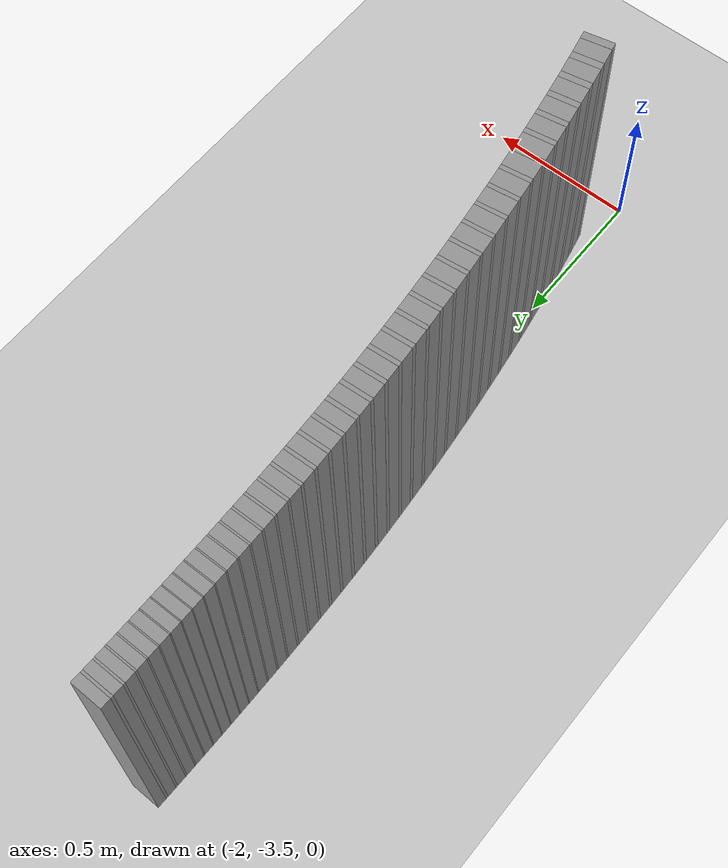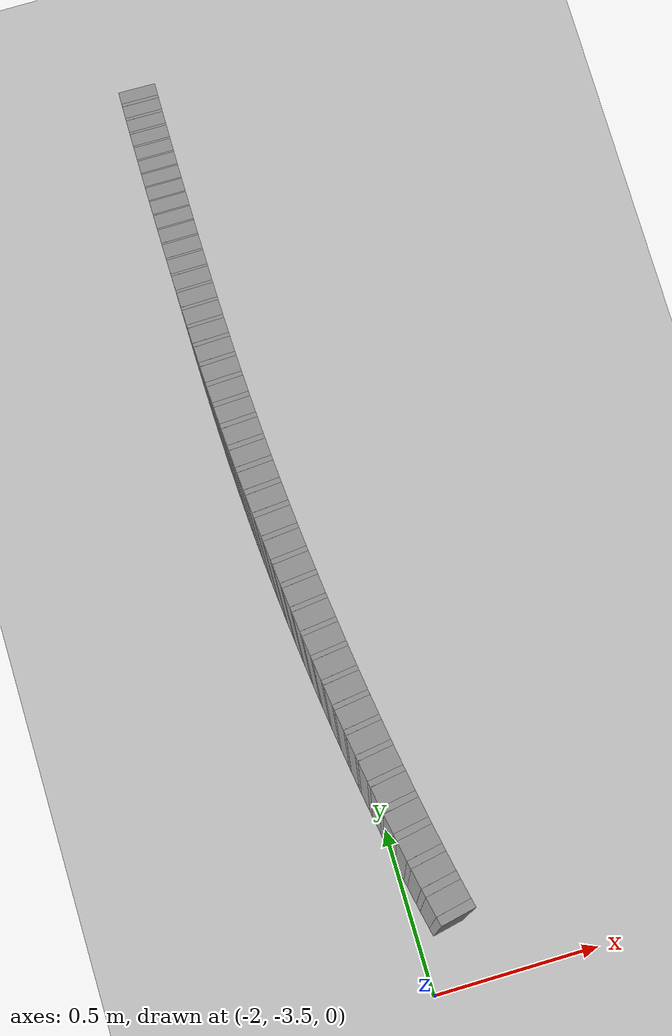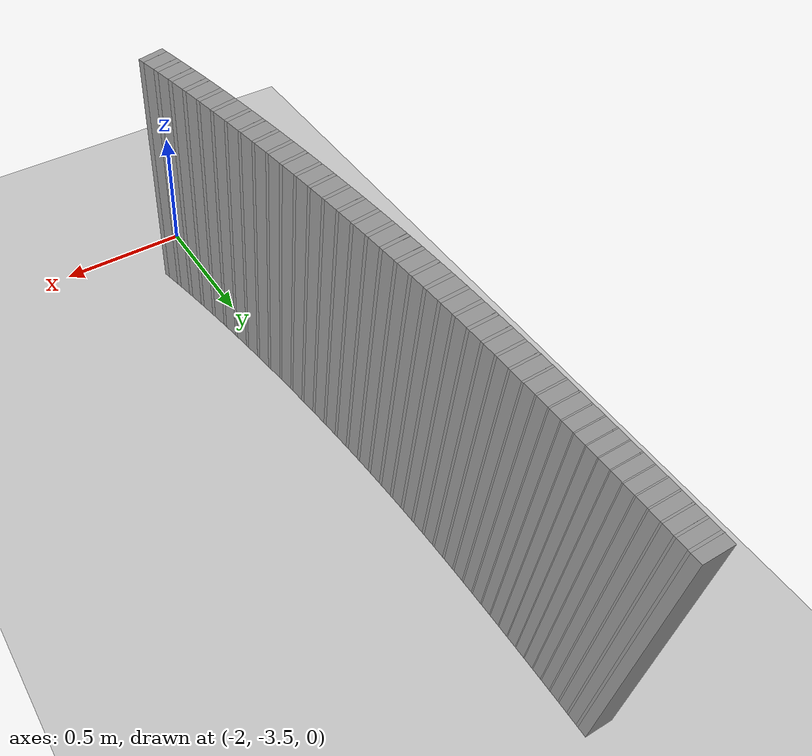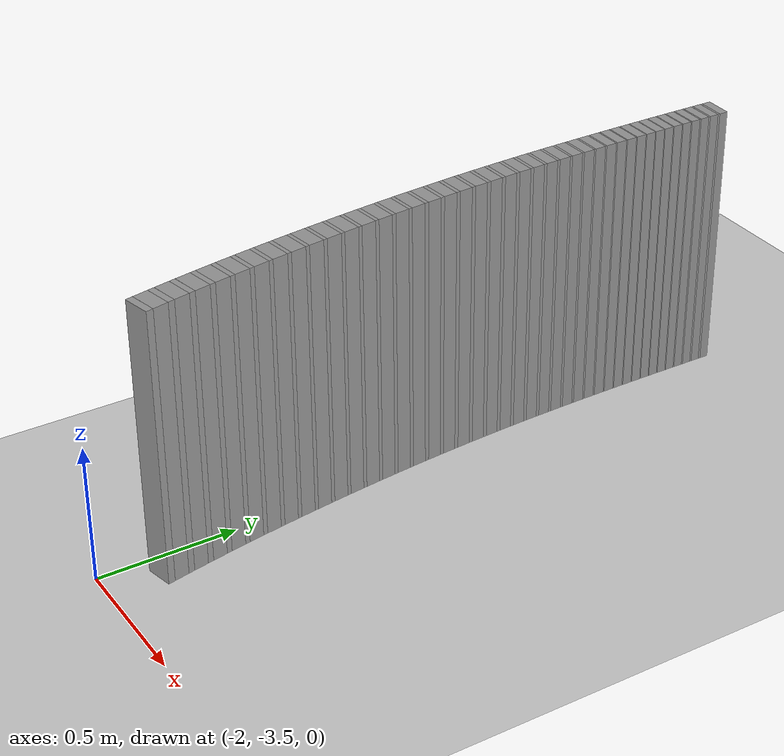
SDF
<sdf version="1.6">
 <world name="default">
  <include><uri>model://ground_plane</uri></include>
  <include><uri>model://sun</uri></include>
  <model name="wall_805_outward">
   <static>true</static>
   <link name="link">
    <collision name="collision">
     <geometry><box><size>0.026101114466182417 0.1 1.0</size></box></geometry>
    </collision>
    <visual name="visual">
     <geometry><box><size>0.026101114466182417 0.1 1.0</size></box></geometry>
     <material>
      <script><uri>file://media/materials/scripts/gazebo.material</uri><name>Gazebo/Gray</name></script>
     </material>
    </visual>
   </link>
   <pose>-1.906251266252485 -3.312685699877262 0.5 0 0 1.7843257864441062</pose>
  </model>
  <model name="wall_806_outward">
   <static>true</static>
   <link name="link">
    <collision name="collision">
     <geometry><box><size>0.055365599347843346 0.1 1.0</size></box></geometry>
    </collision>
    <visual name="visual">
     <geometry><box><size>0.055365599347843346 0.1 1.0</size></box></geometry>
     <material>
      <script><uri>file://media/materials/scripts/gazebo.material</uri><name>Gazebo/Gray</name></script>
     </material>
    </visual>
   </link>
   <pose>-1.9147064324723306 -3.2728397321254095 0.5 0 0 1.7778004615197482</pose>
  </model>
  <model name="wall_807_outward">
   <static>true</static>
   <link name="link">
    <collision name="collision">
     <geometry><box><size>0.023868733235289666 0.1 1.0</size></box></geometry>
    </collision>
    <visual name="visual">
     <geometry><box><size>0.023868733235289666 0.1 1.0</size></box></geometry>
     <material>
      <script><uri>file://media/materials/scripts/gazebo.material</uri><name>Gazebo/Gray</name></script>
     </material>
    </visual>
   </link>
   <pose>-1.922779168002299 -3.2340539223218454 0.5 0 0 1.7718332427978358</pose>
  </model>
  <model name="wall_808_outward">
   <static>true</static>
   <link name="link">
    <collision name="collision">
     <geometry><box><size>0.05557156901594312 0.1 1.0</size></box></geometry>
    </collision>
    <visual name="visual">
     <geometry><box><size>0.05557156901594312 0.1 1.0</size></box></geometry>
     <material>
      <script><uri>file://media/materials/scripts/gazebo.material</uri><name>Gazebo/Gray</name></script>
     </material>
    </visual>
   </link>
   <pose>-1.930548142678702 -3.195101109455034 0.5 0 0 1.765866024075912</pose>
  </model>
  <model name="wall_809_outward">
   <static>true</static>
   <link name="link">
    <collision name="collision">
     <geometry><box><size>0.021793878816943484 0.1 1.0</size></box></geometry>
    </collision>
    <visual name="visual">
     <geometry><box><size>0.021793878816943484 0.1 1.0</size></box></geometry>
     <material>
      <script><uri>file://media/materials/scripts/gazebo.material</uri><name>Gazebo/Gray</name></script>
     </material>
    </visual>
   </link>
   <pose>-1.937987928057562 -3.157140686185897 0.5 0 0 1.7604175274142606</pose>
  </model>
  <model name="wall_810_outward">
   <static>true</static>
   <link name="link">
    <collision name="collision">
     <geometry><box><size>0.05575799635424003 0.1 1.0</size></box></geometry>
    </collision>
    <visual name="visual">
     <geometry><box><size>0.05575799635424003 0.1 1.0</size></box></geometry>
     <material>
      <script><uri>file://media/materials/scripts/gazebo.material</uri><name>Gazebo/Gray</name></script>
     </material>
    </visual>
   </link>
   <pose>-1.9451474310706933 -3.11903155560341 0.5 0 0 1.7549690307526227</pose>
  </model>
  <model name="wall_811_outward">
   <static>true</static>
   <link name="link">
    <collision name="collision">
     <geometry><box><size>0.01992765536667884 0.1 1.0</size></box></geometry>
    </collision>
    <visual name="visual">
     <geometry><box><size>0.01992765536667884 0.1 1.0</size></box></geometry>
     <material>
      <script><uri>file://media/materials/scripts/gazebo.material</uri><name>Gazebo/Gray</name></script>
     </material>
    </visual>
   </link>
   <pose>-1.952028890240169 -3.081819755131357 0.5 0 0 1.7499870963026463</pose>
  </model>
  <model name="wall_812_outward">
   <static>true</static>
   <link name="link">
    <collision name="collision">
     <geometry><box><size>0.055901612710562036 0.1 1.0</size></box></geometry>
    </collision>
    <visual name="visual">
     <geometry><box><size>0.055901612710562036 0.1 1.0</size></box></geometry>
     <material>
      <script><uri>file://media/materials/scripts/gazebo.material</uri><name>Gazebo/Gray</name></script>
     </material>
    </visual>
   </link>
   <pose>-1.958649462085041 -3.0444877234355143 0.5 0 0 1.7450051618526778</pose>
  </model>
  <model name="wall_813_outward">
   <static>true</static>
   <link name="link">
    <collision name="collision">
     <geometry><box><size>0.018301767698452858 0.1 1.0</size></box></geometry>
    </collision>
    <visual name="visual">
     <geometry><box><size>0.018301767698452858 0.1 1.0</size></box></geometry>
     <material>
      <script><uri>file://media/materials/scripts/gazebo.material</uri><name>Gazebo/Gray</name></script>
     </material>
    </visual>
   </link>
   <pose>-1.9650390088183514 -3.0079404423603116 0.5 0 0 1.7404297039636867</pose>
  </model>
  <model name="wall_814_outward">
   <static>true</static>
   <link name="link">
    <collision name="collision">
     <geometry><box><size>0.05598160832519404 0.1 1.0</size></box></geometry>
    </collision>
    <visual name="visual">
     <geometry><box><size>0.05598160832519404 0.1 1.0</size></box></geometry>
     <material>
      <script><uri>file://media/materials/scripts/gazebo.material</uri><name>Gazebo/Gray</name></script>
     </material>
    </visual>
   </link>
   <pose>-1.9711830241899315 -2.9713105269736393 0.5 0 0 1.7358542460746949</pose>
  </model>
  <model name="wall_815_outward">
   <static>true</static>
   <link name="link">
    <collision name="collision">
     <geometry><box><size>0.016937672406390564 0.1 1.0</size></box></geometry>
    </collision>
    <visual name="visual">
     <geometry><box><size>0.016937672406390564 0.1 1.0</size></box></geometry>
     <material>
      <script><uri>file://media/materials/scripts/gazebo.material</uri><name>Gazebo/Gray</name></script>
     </material>
    </visual>
   </link>
   <pose>-1.9771383024511584 -2.935340598060077 0.5 0 0 1.7316198153189353</pose>
  </model>
  <model name="wall_816_outward">
   <static>true</static>
   <link name="link">
    <collision name="collision">
     <geometry><box><size>0.05598149987889856 0.1 1.0</size></box></geometry>
    </collision>
    <visual name="visual">
     <geometry><box><size>0.05598149987889856 0.1 1.0</size></box></geometry>
     <material>
      <script><uri>file://media/materials/scripts/gazebo.material</uri><name>Gazebo/Gray</name></script>
     </material>
    </visual>
   </link>
   <pose>-1.9828595816666523 -2.8993327636979283 0.5 0 0 1.7273853845631737</pose>
  </model>
  <model name="wall_817_outward">
   <static>true</static>
   <link name="link">
    <collision name="collision">
     <geometry><box><size>0.015840406032205375 0.1 1.0</size></box></geometry>
    </collision>
    <visual name="visual">
     <geometry><box><size>0.015840406032205375 0.1 1.0</size></box></geometry>
     <material>
      <script><uri>file://media/materials/scripts/gazebo.material</uri><name>Gazebo/Gray</name></script>
     </material>
    </visual>
   </link>
   <pose>-1.9884289008446383 -2.863856352529578 0.5 0 0 1.7234252727043915</pose>
  </model>
  <model name="wall_818_outward">
   <static>true</static>
   <link name="link">
    <collision name="collision">
     <geometry><box><size>0.05588767962854641 0.1 1.0</size></box></geometry>
    </collision>
    <visual name="visual">
     <geometry><box><size>0.05588767962854641 0.1 1.0</size></box></geometry>
     <material>
      <script><uri>file://media/materials/scripts/gazebo.material</uri><name>Gazebo/Gray</name></script>
     </material>
    </visual>
   </link>
   <pose>-1.993772156408659 -2.8283926285674856 0.5 0 0 1.7194651608456204</pose>
  </model>
  <model name="wall_819_outward">
   <static>true</static>
   <link name="link">
    <collision name="collision">
     <geometry><box><size>0.01498653764636429 0.1 1.0</size></box></geometry>
    </collision>
    <visual name="visual">
     <geometry><box><size>0.01498653764636429 0.1 1.0</size></box></geometry>
     <material>
      <script><uri>file://media/materials/scripts/gazebo.material</uri><name>Gazebo/Gray</name></script>
     </material>
    </visual>
   </link>
   <pose>-1.9989933914490945 -2.793342315673714 0.5 0 0 1.71571851766857</pose>
  </model>
  <model name="wall_820_outward">
   <static>true</static>
   <link name="link">
    <collision name="collision">
     <geometry><box><size>0.05569254163071618 0.1 1.0</size></box></geometry>
    </collision>
    <visual name="visual">
     <geometry><box><size>0.05569254163071618 0.1 1.0</size></box></geometry>
     <material>
      <script><uri>file://media/materials/scripts/gazebo.material</uri><name>Gazebo/Gray</name></script>
     </material>
    </visual>
   </link>
   <pose>-2.003993702150703 -2.758358361841562 0.5 0 0 1.711971874491481</pose>
  </model>
  <model name="wall_821_outward">
   <static>true</static>
   <link name="link">
    <collision name="collision">
     <geometry><box><size>0.014364639638313621 0.1 1.0</size></box></geometry>
    </collision>
    <visual name="visual">
     <geometry><box><size>0.014364639638313621 0.1 1.0</size></box></geometry>
     <material>
      <script><uri>file://media/materials/scripts/gazebo.material</uri><name>Gazebo/Gray</name></script>
     </material>
    </visual>
   </link>
   <pose>-2.0088969295286736 -2.723674677726181 0.5 0 0 1.7083807068630281</pose>
  </model>
  <model name="wall_822_outward">
   <static>true</static>
   <link name="link">
    <collision name="collision">
     <geometry><box><size>0.0553910246657341 0.1 1.0</size></box></geometry>
    </collision>
    <visual name="visual">
     <geometry><box><size>0.0553910246657341 0.1 1.0</size></box></geometry>
     <material>
      <script><uri>file://media/materials/scripts/gazebo.material</uri><name>Gazebo/Gray</name></script>
     </material>
    </visual>
   </link>
   <pose>-2.0135819058336275 -2.6891129704867205 0.5 0 0 1.7047895392345283</pose>
  </model>
  <model name="wall_823_outward">
   <static>true</static>
   <link name="link">
    <collision name="collision">
     <geometry><box><size>0.013958855004138309 0.1 1.0</size></box></geometry>
    </collision>
    <visual name="visual">
     <geometry><box><size>0.013958855004138309 0.1 1.0</size></box></geometry>
     <material>
      <script><uri>file://media/materials/scripts/gazebo.material</uri><name>Gazebo/Gray</name></script>
     </material>
    </visual>
   </link>
   <pose>-2.018190078189265 -2.6547456335797497 0.5 0 0 1.7012998184004398</pose>
  </model>
  <model name="wall_824_outward">
   <static>true</static>
   <link name="link">
    <collision name="collision">
     <geometry><box><size>0.05498393052218721 0.1 1.0</size></box></geometry>
    </collision>
    <visual name="visual">
     <geometry><box><size>0.05498393052218721 0.1 1.0</size></box></geometry>
     <material>
      <script><uri>file://media/materials/scripts/gazebo.material</uri><name>Gazebo/Gray</name></script>
     </material>
    </visual>
   </link>
   <pose>-2.0225808116171207 -2.620555049462502 0.5 0 0 1.697810097566351</pose>
  </model>
  <model name="wall_825_outward">
   <static>true</static>
   <link name="link">
    <collision name="collision">
     <geometry><box><size>0.013739665984322772 0.1 1.0</size></box></geometry>
    </collision>
    <visual name="visual">
     <geometry><box><size>0.013739665984322772 0.1 1.0</size></box></geometry>
     <material>
      <script><uri>file://media/materials/scripts/gazebo.material</uri><name>Gazebo/Gray</name></script>
     </material>
    </visual>
   </link>
   <pose>-2.026910095458298 -2.5864671006791182 0.5 0 0 1.6943751743156807</pose>
  </model>
  <model name="wall_826_outward">
   <static>true</static>
   <link name="link">
    <collision name="collision">
     <geometry><box><size>0.05447580906649355 0.1 1.0</size></box></geometry>
    </collision>
    <visual name="visual">
     <geometry><box><size>0.05447580906649355 0.1 1.0</size></box></geometry>
     <material>
      <script><uri>file://media/materials/scripts/gazebo.material</uri><name>Gazebo/Gray</name></script>
     </material>
    </visual>
   </link>
   <pose>-2.0310215039317394 -2.552608100816479 0.5 0 0 1.6909402510649862</pose>
  </model>
  <model name="wall_827_outward">
   <static>true</static>
   <link name="link">
    <collision name="collision">
     <geometry><box><size>0.013662488558460402 0.1 1.0</size></box></geometry>
    </collision>
    <visual name="visual">
     <geometry><box><size>0.013662488558460402 0.1 1.0</size></box></geometry>
     <material>
      <script><uri>file://media/materials/scripts/gazebo.material</uri><name>Gazebo/Gray</name></script>
     </material>
    </visual>
   </link>
   <pose>-2.0350816954824364 -2.5187817859919917 0.5 0 0 1.6875246222839455</pose>
  </model>
  <model name="wall_828_outward">
   <static>true</static>
   <link name="link">
    <collision name="collision">
     <geometry><box><size>0.053873935459573336 0.1 1.0</size></box></geometry>
    </collision>
    <visual name="visual">
     <geometry><box><size>0.053873935459573336 0.1 1.0</size></box></geometry>
     <material>
      <script><uri>file://media/materials/scripts/gazebo.material</uri><name>Gazebo/Gray</name></script>
     </material>
    </visual>
   </link>
   <pose>-2.0389230574285158 -2.485232807857095 0.5 0 0 1.6841089935029319</pose>
  </model>
  <model name="wall_829_outward">
   <static>true</static>
   <link name="link">
    <collision name="collision">
     <geometry><box><size>0.013717733022463196 0.1 1.0</size></box></geometry>
    </collision>
    <visual name="visual">
     <geometry><box><size>0.013717733022463196 0.1 1.0</size></box></geometry>
     <material>
      <script><uri>file://media/materials/scripts/gazebo.material</uri><name>Gazebo/Gray</name></script>
     </material>
    </visual>
   </link>
   <pose>-2.042720988082314 -2.4516510872064377 0.5 0 0 1.6806795535250518</pose>
  </model>
  <model name="wall_830_outward">
   <static>true</static>
   <link name="link">
    <collision name="collision">
     <geometry><box><size>0.05318836920498471 0.1 1.0</size></box></geometry>
    </collision>
    <visual name="visual">
     <geometry><box><size>0.05318836920498471 0.1 1.0</size></box></geometry>
     <material>
      <script><uri>file://media/materials/scripts/gazebo.material</uri><name>Gazebo/Gray</name></script>
     </material>
    </visual>
   </link>
   <pose>-2.046298854276681 -2.4183899483650277 0.5 0 0 1.6772501135470932</pose>
  </model>
  <model name="wall_831_outward">
   <static>true</static>
   <link name="link">
    <collision name="collision">
     <geometry><box><size>0.013857842791134776 0.1 1.0</size></box></geometry>
    </collision>
    <visual name="visual">
     <geometry><box><size>0.013857842791134776 0.1 1.0</size></box></geometry>
     <material>
      <script><uri>file://media/materials/scripts/gazebo.material</uri><name>Gazebo/Gray</name></script>
     </material>
    </visual>
   </link>
   <pose>-2.0498369059113566 -2.385054102572634 0.5 0 0 1.673785645918911</pose>
  </model>
  <model name="wall_832_outward">
   <static>true</static>
   <link name="link">
    <collision name="collision">
     <geometry><box><size>0.052432609224809204 0.1 1.0</size></box></geometry>
    </collision>
    <visual name="visual">
     <geometry><box><size>0.052432609224809204 0.1 1.0</size></box></geometry>
     <material>
      <script><uri>file://media/materials/scripts/gazebo.material</uri><name>Gazebo/Gray</name></script>
     </material>
    </visual>
   </link>
   <pose>-2.0531541185260065 -2.3520753226176128 0.5 0 0 1.6703211782907352</pose>
  </model>
  <model name="wall_833_outward">
   <static>true</static>
   <link name="link">
    <collision name="collision">
     <geometry><box><size>0.01404878281194037 0.1 1.0</size></box></geometry>
    </collision>
    <visual name="visual">
     <geometry><box><size>0.01404878281194037 0.1 1.0</size></box></geometry>
     <material>
      <script><uri>file://media/materials/scripts/gazebo.material</uri><name>Gazebo/Gray</name></script>
     </material>
    </visual>
   </link>
   <pose>-2.0564323817885892 -2.3189967103412457 0.5 0 0 1.6668089753669324</pose>
  </model>
  <model name="wall_834_outward">
   <static>true</static>
   <link name="link">
    <collision name="collision">
     <geometry><box><size>0.051620085810784214 0.1 1.0</size></box></geometry>
    </collision>
    <visual name="visual">
     <geometry><box><size>0.051620085810784214 0.1 1.0</size></box></geometry>
     <material>
      <script><uri>file://media/materials/scripts/gazebo.material</uri><name>Gazebo/Gray</name></script>
     </material>
    </visual>
   </link>
   <pose>-2.0594898137962687 -2.2863049690350525 0.5 0 0 1.6632967724430991</pose>
  </model>
  <model name="wall_835_outward">
   <static>true</static>
   <link name="link">
    <collision name="collision">
     <geometry><box><size>0.014204108194103305 0.1 1.0</size></box></geometry>
    </collision>
    <visual name="visual">
     <geometry><box><size>0.014204108194103305 0.1 1.0</size></box></geometry>
     <material>
      <script><uri>file://media/materials/scripts/gazebo.material</uri><name>Gazebo/Gray</name></script>
     </material>
    </visual>
   </link>
   <pose>-2.062504741927836 -2.2535312901749838 0.5 0 0 1.6597457379315792</pose>
  </model>
  <model name="wall_836_outward">
   <static>true</static>
   <link name="link">
    <collision name="collision">
     <geometry><box><size>0.0507649620986128 0.1 1.0</size></box></geometry>
    </collision>
    <visual name="visual">
     <geometry><box><size>0.0507649620986128 0.1 1.0</size></box></geometry>
     <material>
      <script><uri>file://media/materials/scripts/gazebo.material</uri><name>Gazebo/Gray</name></script>
     </material>
    </visual>
   </link>
   <pose>-2.065300621688487 -2.2211673317197405 0.5 0 0 1.6561947034200635</pose>
  </model>
  <model name="wall_837_outward">
   <static>true</static>
   <link name="link">
    <collision name="collision">
     <geometry><box><size>0.01436101219956566 0.1 1.0</size></box></geometry>
    </collision>
    <visual name="visual">
     <geometry><box><size>0.01436101219956566 0.1 1.0</size></box></geometry>
     <material>
      <script><uri>file://media/materials/scripts/gazebo.material</uri><name>Gazebo/Gray</name></script>
     </material>
    </visual>
   </link>
   <pose>-2.068052379287768 -2.1887208586775926 0.5 0 0 1.65260444265711</pose>
  </model>
  <model name="wall_838_outward">
   <static>true</static>
   <link name="link">
    <collision name="collision">
     <geometry><box><size>0.04988134985242393 0.1 1.0</size></box></geometry>
    </collision>
    <visual name="visual">
     <geometry><box><size>0.04988134985242393 0.1 1.0</size></box></geometry>
     <material>
      <script><uri>file://media/materials/scripts/gazebo.material</uri><name>Gazebo/Gray</name></script>
     </material>
    </visual>
   </link>
   <pose>-2.070587965476383 -2.1566999473107202 0.5 0 0 1.649014181894171</pose>
  </model>
  <model name="wall_839_outward">
   <static>true</static>
   <link name="link">
    <collision name="collision">
     <geometry><box><size>0.014413291470332847 0.1 1.0</size></box></geometry>
    </collision>
    <visual name="visual">
     <geometry><box><size>0.014413291470332847 0.1 1.0</size></box></geometry>
     <material>
      <script><uri>file://media/materials/scripts/gazebo.material</uri><name>Gazebo/Gray</name></script>
     </material>
    </visual>
   </link>
   <pose>-2.073074004638496 -2.1246489332664216 0.5 0 0 1.6454108512289936</pose>
  </model>
  <model name="wall_840_outward">
   <static>true</static>
   <link name="link">
    <collision name="collision">
     <geometry><box><size>0.048981101194899984 0.1 1.0</size></box></geometry>
    </collision>
    <visual name="visual">
     <geometry><box><size>0.048981101194899984 0.1 1.0</size></box></geometry>
     <material>
      <script><uri>file://media/materials/scripts/gazebo.material</uri><name>Gazebo/Gray</name></script>
     </material>
    </visual>
   </link>
   <pose>-2.0753488682825054 -2.093033510461309 0.5 0 0 1.6418075205638085</pose>
  </model>
  <model name="wall_841_outward">
   <static>true</static>
   <link name="link">
    <collision name="collision">
     <geometry><box><size>0.014344052613997356 0.1 1.0</size></box></geometry>
    </collision>
    <visual name="visual">
     <geometry><box><size>0.014344052613997356 0.1 1.0</size></box></geometry>
     <material>
      <script><uri>file://media/materials/scripts/gazebo.material</uri><name>Gazebo/Gray</name></script>
     </material>
    </visual>
   </link>
   <pose>-2.077569719083761 -2.0614489519047585 0.5 0 0 1.6382214997245168</pose>
  </model>
  <model name="wall_842_outward">
   <static>true</static>
   <link name="link">
    <collision name="collision">
     <geometry><box><size>0.0480750109535802 0.1 1.0</size></box></geometry>
    </collision>
    <visual name="visual">
     <geometry><box><size>0.0480750109535802 0.1 1.0</size></box></geometry>
     <material>
      <script><uri>file://media/materials/scripts/gazebo.material</uri><name>Gazebo/Gray</name></script>
     </material>
    </visual>
   </link>
   <pose>-2.079586419744099 -2.0303046815543837 0.5 0 0 1.634635478885287</pose>
  </model>
  <model name="wall_843_outward">
   <static>true</static>
   <link name="link">
    <collision name="collision">
     <geometry><box><size>0.014123345089744903 0.1 1.0</size></box></geometry>
    </collision>
    <visual name="visual">
     <geometry><box><size>0.014123345089744903 0.1 1.0</size></box></geometry>
     <material>
      <script><uri>file://media/materials/scripts/gazebo.material</uri><name>Gazebo/Gray</name></script>
     </material>
    </visual>
   </link>
   <pose>-2.0815455310221873 -1.9992673066583193 0.5 0 0 1.6311046352764293</pose>
  </model>
  <model name="wall_844_outward">
   <static>true</static>
   <link name="link">
    <collision name="collision">
     <geometry><box><size>0.04717200251562406 0.1 1.0</size></box></geometry>
    </collision>
    <visual name="visual">
     <geometry><box><size>0.04717200251562406 0.1 1.0</size></box></geometry>
     <material>
      <script><uri>file://media/materials/scripts/gazebo.material</uri><name>Gazebo/Gray</name></script>
     </material>
    </visual>
   </link>
   <pose>-2.0833095844095 -1.968670477595046 0.5 0 0 1.6275737916675783</pose>
  </model>
  <model name="wall_845_outward">
   <static>true</static>
   <link name="link">
    <collision name="collision">
     <geometry><box><size>0.013725528113957764 0.1 1.0</size></box></geometry>
    </collision>
    <visual name="visual">
     <geometry><box><size>0.013725528113957764 0.1 1.0</size></box></geometry>
     <material>
      <script><uri>file://media/materials/scripts/gazebo.material</uri><name>Gazebo/Gray</name></script>
     </material>
    </visual>
   </link>
   <pose>-2.08501394629916 -1.9382694816594468 0.5 0 0 1.6241424029053126</pose>
  </model>
  <model name="wall_846_outward">
   <static>true</static>
   <link name="link">
    <collision name="collision">
     <geometry><box><size>0.04627622644518665 0.1 1.0</size></box></geometry>
    </collision>
    <visual name="visual">
     <geometry><box><size>0.04627622644518665 0.1 1.0</size></box></geometry>
     <material>
      <script><uri>file://media/materials/scripts/gazebo.material</uri><name>Gazebo/Gray</name></script>
     </material>
    </visual>
   </link>
   <pose>-2.086534326381692 -1.9083071851474593 0.5 0 0 1.6207110141430687</pose>
  </model>
  <model name="wall_847_outward">
   <static>true</static>
   <link name="link">
    <collision name="collision">
     <geometry><box><size>0.013139259842641929 0.1 1.0</size></box></geometry>
    </collision>
    <visual name="visual">
     <geometry><box><size>0.013139259842641929 0.1 1.0</size></box></geometry>
     <material>
      <script><uri>file://media/materials/scripts/gazebo.material</uri><name>Gazebo/Gray</name></script>
     </material>
    </visual>
   </link>
   <pose>-2.087995008510993 -1.878635401071663 0.5 0 0 1.6174261932751604</pose>
  </model>
  <model name="wall_848_outward">
   <static>true</static>
   <link name="link">
    <collision name="collision">
     <geometry><box><size>0.04539241115154092 0.1 1.0</size></box></geometry>
    </collision>
    <visual name="visual">
     <geometry><box><size>0.04539241115154092 0.1 1.0</size></box></geometry>
     <material>
      <script><uri>file://media/materials/scripts/gazebo.material</uri><name>Gazebo/Gray</name></script>
     </material>
    </visual>
   </link>
   <pose>-2.089284698519412 -1.8493980239976318 0.5 0 0 1.6141413724072866</pose>
  </model>
  <model name="wall_849_outward">
   <static>true</static>
   <link name="link">
    <collision name="collision">
     <geometry><box><size>0.012429973896954676 0.1 1.0</size></box></geometry>
    </collision>
    <visual name="visual">
     <geometry><box><size>0.012429973896954676 0.1 1.0</size></box></geometry>
     <material>
      <script><uri>file://media/materials/scripts/gazebo.material</uri><name>Gazebo/Gray</name></script>
     </material>
    </visual>
   </link>
   <pose>-2.090518166919289 -1.820513179411554 0.5 0 0 1.6110338739317585</pose>
  </model>
  <model name="wall_850_outward">
   <static>true</static>
   <link name="link">
    <collision name="collision">
     <geometry><box><size>0.044521685977948776 0.1 1.0</size></box></geometry>
    </collision>
    <visual name="visual">
     <geometry><box><size>0.044521685977948776 0.1 1.0</size></box></geometry>
     <material>
      <script><uri>file://media/materials/scripts/gazebo.material</uri><name>Gazebo/Gray</name></script>
     </material>
    </visual>
   </link>
   <pose>-2.0915945315519138 -1.7920577231014905 0.5 0 0 1.6079263754562467</pose>
  </model>
  <model name="wall_851_outward">
   <static>true</static>
   <link name="link">
    <collision name="collision">
     <geometry><box><size>0.011510125060694662 0.1 1.0</size></box></geometry>
    </collision>
    <visual name="visual">
     <geometry><box><size>0.011510125060694662 0.1 1.0</size></box></geometry>
     <material>
      <script><uri>file://media/materials/scripts/gazebo.material</uri><name>Gazebo/Gray</name></script>
     </material>
    </visual>
   </link>
   <pose>-2.092617974643212 -1.7640605363587385 0.5 0 0 1.6050488402199776</pose>
  </model>
  <model name="wall_852_outward">
   <static>true</static>
   <link name="link">
    <collision name="collision">
     <geometry><box><size>0.04366318828276564 0.1 1.0</size></box></geometry>
    </collision>
    <visual name="visual">
     <geometry><box><size>0.04366318828276564 0.1 1.0</size></box></geometry>
     <material>
      <script><uri>file://media/materials/scripts/gazebo.material</uri><name>Gazebo/Gray</name></script>
     </material>
    </visual>
   </link>
   <pose>-2.0934999148730555 -1.7364879998883298 0.5 0 0 1.6021713049837085</pose>
  </model>
  <model name="wall_853_outward">
   <static>true</static>
   <link name="link">
    <collision name="collision">
     <geometry><box><size>0.010519857348723693 0.1 1.0</size></box></geometry>
    </collision>
    <visual name="visual">
     <geometry><box><size>0.010519857348723693 0.1 1.0</size></box></geometry>
     <material>
      <script><uri>file://media/materials/scripts/gazebo.material</uri><name>Gazebo/Gray</name></script>
     </material>
    </visual>
   </link>
   <pose>-2.0943359441755955 -1.7094093945103626 0.5 0 0 1.5995413376147636</pose>
  </model>
  <model name="wall_854_outward">
   <static>true</static>
   <link name="link">
    <collision name="collision">
     <geometry><box><size>0.042817609184752685 0.1 1.0</size></box></geometry>
    </collision>
    <visual name="visual">
     <geometry><box><size>0.042817609184752685 0.1 1.0</size></box></geometry>
     <material>
      <script><uri>file://media/materials/scripts/gazebo.material</uri><name>Gazebo/Gray</name></script>
     </material>
    </visual>
   </link>
   <pose>-2.095046148376059 -1.6827501341087285 0.5 0 0 1.5969113702457518</pose>
  </model>
  <model name="wall_855_outward">
   <static>true</static>
   <link name="link">
    <collision name="collision">
     <geometry><box><size>0.009422410297821713 0.1 1.0</size></box></geometry>
    </collision>
    <visual name="visual">
     <geometry><box><size>0.009422410297821713 0.1 1.0</size></box></geometry>
     <material>
      <script><uri>file://media/materials/scripts/gazebo.material</uri><name>Gazebo/Gray</name></script>
     </material>
    </visual>
   </link>
   <pose>-2.0957171017494467 -1.6566387540075258 0.5 0 0 1.594555765492782</pose>
  </model>
  <model name="wall_856_outward">
   <static>true</static>
   <link name="link">
    <collision name="collision">
     <geometry><box><size>0.04198308222983669 0.1 1.0</size></box></geometry>
    </collision>
    <visual name="visual">
     <geometry><box><size>0.04198308222983669 0.1 1.0</size></box></geometry>
     <material>
      <script><uri>file://media/materials/scripts/gazebo.material</uri><name>Gazebo/Gray</name></script>
     </material>
    </visual>
   </link>
   <pose>-2.0962782919634346 -1.6309421456264892 0.5 0 0 1.5922001607398655</pose>
  </model>
  <model name="wall_857_outward">
   <static>true</static>
   <link name="link">
    <collision name="collision">
     <geometry><box><size>0.008331792437866118 0.1 1.0</size></box></geometry>
    </collision>
    <visual name="visual">
     <geometry><box><size>0.008331792437866118 0.1 1.0</size></box></geometry>
     <material>
      <script><uri>file://media/materials/scripts/gazebo.material</uri><name>Gazebo/Gray</name></script>
     </material>
    </visual>
   </link>
   <pose>-2.0968080409100427 -1.6057902940077906 0.5 0 0 1.5901172111242066</pose>
  </model>
  <model name="wall_858_outward">
   <static>true</static>
   <link name="link">
    <collision name="collision">
     <geometry><box><size>0.04116128882618245 0.1 1.0</size></box></geometry>
    </collision>
    <visual name="visual">
     <geometry><box><size>0.04116128882618245 0.1 1.0</size></box></geometry>
     <material>
      <script><uri>file://media/materials/scripts/gazebo.material</uri><name>Gazebo/Gray</name></script>
     </material>
    </visual>
   </link>
   <pose>-2.0972432749367673 -1.5810475885653787 0.5 0 0 1.5880342615085137</pose>
  </model>
  <model name="wall_859_outward">
   <static>true</static>
   <link name="link">
    <collision name="collision">
     <geometry><box><size>0.007226873621864689 0.1 1.0</size></box></geometry>
    </collision>
    <visual name="visual">
     <geometry><box><size>0.007226873621864689 0.1 1.0</size></box></geometry>
     <material>
      <script><uri>file://media/materials/scripts/gazebo.material</uri><name>Gazebo/Gray</name></script>
     </material>
    </visual>
   </link>
   <pose>-2.097653782680703 -1.5568569952093656 0.5 0 0 1.5862275421200958</pose>
  </model>
  <model name="wall_860_outward">
   <static>true</static>
   <link name="link">
    <collision name="collision">
     <geometry><box><size>0.04035325941731026 0.1 1.0</size></box></geometry>
    </collision>
    <visual name="visual">
     <geometry><box><size>0.04035325941731026 0.1 1.0</size></box></geometry>
     <material>
      <script><uri>file://media/materials/scripts/gazebo.material</uri><name>Gazebo/Gray</name></script>
     </material>
    </visual>
   </link>
   <pose>-2.0979844280941524 -1.5330692315349146 0.5 0 0 1.5844208227317316</pose>
  </model>
  <model name="wall_861_outward">
   <static>true</static>
   <link name="link">
    <collision name="collision">
     <geometry><box><size>0.00621949198921111 0.1 1.0</size></box></geometry>
    </collision>
    <visual name="visual">
     <geometry><box><size>0.00621949198921111 0.1 1.0</size></box></geometry>
     <material>
      <script><uri>file://media/materials/scripts/gazebo.material</uri><name>Gazebo/Gray</name></script>
     </material>
    </visual>
   </link>
   <pose>-2.0982968485473865 -1.5097849549697844 0.5 0 0 1.5828659491079464</pose>
  </model>
  <model name="wall_862_outward">
   <static>true</static>
   <link name="link">
    <collision name="collision">
     <geometry><box><size>0.039561779216406245 0.1 1.0</size></box></geometry>
    </collision>
    <visual name="visual">
     <geometry><box><size>0.039561779216406245 0.1 1.0</size></box></geometry>
     <material>
      <script><uri>file://media/materials/scripts/gazebo.material</uri><name>Gazebo/Gray</name></script>
     </material>
    </visual>
   </link>
   <pose>-2.0985423683462714 -1.4868956393484765 0.5 0 0 1.5813110754840791</pose>
  </model>
  <model name="wall_863_outward">
   <static>true</static>
   <link name="link">
    <collision name="collision">
     <geometry><box><size>0.005306538240702167 0.1 1.0</size></box></geometry>
    </collision>
    <visual name="visual">
     <geometry><box><size>0.005306538240702167 0.1 1.0</size></box></geometry>
     <material>
      <script><uri>file://media/materials/scripts/gazebo.material</uri><name>Gazebo/Gray</name></script>
     </material>
    </visual>
   </link>
   <pose>-2.098774733792241 -1.464462686092436 0.5 0 0 1.579984440534772</pose>
  </model>
  <model name="wall_864_outward">
   <static>true</static>
   <link name="link">
    <collision name="collision">
     <geometry><box><size>0.038792526202044986 0.1 1.0</size></box></geometry>
    </collision>
    <visual name="visual">
     <geometry><box><size>0.038792526202044986 0.1 1.0</size></box></geometry>
     <material>
      <script><uri>file://media/materials/scripts/gazebo.material</uri><name>Gazebo/Gray</name></script>
     </material>
    </visual>
   </link>
   <pose>-2.09895159372803 -1.4424138652357374 0.5 0 0 1.5786578055854652</pose>
  </model>
  <model name="wall_865_outward">
   <static>true</static>
   <link name="link">
    <collision name="collision">
     <geometry><box><size>0.0045221377855214065 0.1 1.0</size></box></geometry>
    </collision>
    <visual name="visual">
     <geometry><box><size>0.0045221377855214065 0.1 1.0</size></box></geometry>
     <material>
      <script><uri>file://media/materials/scripts/gazebo.material</uri><name>Gazebo/Gray</name></script>
     </material>
    </visual>
   </link>
   <pose>-2.099119294481782 -1.4207571838303825 0.5 0 0 1.5775272708982484</pose>
  </model>
  <model name="wall_866_outward">
   <static>true</static>
   <link name="link">
    <collision name="collision">
     <geometry><box><size>0.03805094335399687 0.1 1.0</size></box></geometry>
    </collision>
    <visual name="visual">
     <geometry><box><size>0.03805094335399687 0.1 1.0</size></box></geometry>
     <material>
      <script><uri>file://media/materials/scripts/gazebo.material</uri><name>Gazebo/Gray</name></script>
     </material>
    </visual>
   </link>
   <pose>-2.099241063368937 -1.399470992842219 0.5 0 0 1.57639673621105</pose>
  </model>
  <model name="wall_867_outward">
   <static>true</static>
   <link name="link">
    <collision name="collision">
     <geometry><box><size>0.0039344128631080355 0.1 1.0</size></box></geometry>
    </collision>
    <visual name="visual">
     <geometry><box><size>0.0039344128631080355 0.1 1.0</size></box></geometry>
     <material>
      <script><uri>file://media/materials/scripts/gazebo.material</uri><name>Gazebo/Gray</name></script>
     </material>
    </visual>
   </link>
   <pose>-2.099356695420954 -1.3784786340612696 0.5 0 0 1.5754131328365997</pose>
  </model>
  <model name="wall_868_outward">
   <static>true</static>
   <link name="link">
    <collision name="collision">
     <geometry><box><size>0.03734317423191866 0.1 1.0</size></box></geometry>
    </collision>
    <visual name="visual">
     <geometry><box><size>0.03734317423191866 0.1 1.0</size></box></geometry>
     <material>
      <script><uri>file://media/materials/scripts/gazebo.material</uri><name>Gazebo/Gray</name></script>
     </material>
    </visual>
   </link>
   <pose>-2.0994336151100974 -1.3578399847129694 0.5 0 0 1.5744295294623016</pose>
  </model>
  <model name="wall_869_outward">
   <static>true</static>
   <link name="link">
    <collision name="collision">
     <geometry><box><size>0.0035310805671794187 0.1 1.0</size></box></geometry>
    </collision>
    <visual name="visual">
     <geometry><box><size>0.0035310805671794187 0.1 1.0</size></box></geometry>
     <material>
      <script><uri>file://media/materials/scripts/gazebo.material</uri><name>Gazebo/Gray</name></script>
     </material>
    </visual>
   </link>
   <pose>-2.099506308614064 -1.3374029872253133 0.5 0 0 1.5735467592058352</pose>
  </model>
  <model name="wall_870_outward">
   <static>true</static>
   <link name="link">
    <collision name="collision">
     <geometry><box><size>0.036675540708356595 0.1 1.0</size></box></geometry>
    </collision>
    <visual name="visual">
     <geometry><box><size>0.036675540708356595 0.1 1.0</size></box></geometry>
     <material>
      <script><uri>file://media/materials/scripts/gazebo.material</uri><name>Gazebo/Gray</name></script>
     </material>
    </visual>
   </link>
   <pose>-2.099545413346937 -1.3172997152481367 0.5 0 0 1.5726639889493839</pose>
  </model>
  <model name="wall_871_outward">
   <static>true</static>
   <link name="link">
    <collision name="collision">
     <geometry><box><size>0.00333070621689709 0.1 1.0</size></box></geometry>
    </collision>
    <visual name="visual">
     <geometry><box><size>0.00333070621689709 0.1 1.0</size></box></geometry>
     <material>
      <script><uri>file://media/materials/scripts/gazebo.material</uri><name>Gazebo/Gray</name></script>
     </material>
    </visual>
   </link>
   <pose>-2.0995813857027334 -1.2972966246600155 0.5 0 0 1.5718313122989054</pose>
  </model>
  <model name="wall_872_outward">
   <static>true</static>
   <link name="link">
    <collision name="collision">
     <geometry><box><size>0.03605327263578769 0.1 1.0</size></box></geometry>
    </collision>
    <visual name="visual">
     <geometry><box><size>0.03605327263578769 0.1 1.0</size></box></geometry>
     <material>
      <script><uri>file://media/materials/scripts/gazebo.material</uri><name>Gazebo/Gray</name></script>
     </material>
    </visual>
   </link>
   <pose>-2.099586756266855 -1.277604636494537 0.5 0 0 1.570998635648508</pose>
  </model>
  <model name="wall_873_outward">
   <static>true</static>
   <link name="link">
    <collision name="collision">
     <geometry><box><size>0.0033871966816214263 0.1 1.0</size></box></geometry>
    </collision>
    <visual name="visual">
     <geometry><box><size>0.0033871966816214263 0.1 1.0</size></box></geometry>
     <material>
      <script><uri>file://media/materials/scripts/gazebo.material</uri><name>Gazebo/Gray</name></script>
     </material>
    </visual>
   </link>
   <pose>-2.099589311707131 -1.2578844025564706 0.5 0 0 1.5701518363769078</pose>
  </model>
  <model name="wall_874_outward">
   <static>true</static>
   <link name="link">
    <collision name="collision">
     <geometry><box><size>0.035479334229580876 0.1 1.0</size></box></geometry>
    </collision>
    <visual name="visual">
     <geometry><box><size>0.035479334229580876 0.1 1.0</size></box></geometry>
     <material>
      <script><uri>file://media/materials/scripts/gazebo.material</uri><name>Gazebo/Gray</name></script>
     </material>
    </visual>
   </link>
   <pose>-2.0995617652264444 -1.2384511571786203 0.5 0 0 1.569305037105285</pose>
  </model>
  <model name="wall_875_outward">
   <static>true</static>
   <link name="link">
    <collision name="collision">
     <geometry><box><size>0.003642627856691789 0.1 1.0</size></box></geometry>
    </collision>
    <visual name="visual">
     <geometry><box><size>0.003642627856691789 0.1 1.0</size></box></geometry>
     <material>
      <script><uri>file://media/materials/scripts/gazebo.material</uri><name>Gazebo/Gray</name></script>
     </material>
    </visual>
   </link>
   <pose>-2.099530935558666 -1.2188902011153966 0.5 0 0 1.568394380015289</pose>
  </model>
  <model name="wall_876_outward">
   <static>true</static>
   <link name="link">
    <collision name="collision">
     <geometry><box><size>0.03495435295727633 0.1 1.0</size></box></geometry>
    </collision>
    <visual name="visual">
     <geometry><box><size>0.03495435295727633 0.1 1.0</size></box></geometry>
     <material>
      <script><uri>file://media/materials/scripts/gazebo.material</uri><name>Gazebo/Gray</name></script>
     </material>
    </visual>
   </link>
   <pose>-2.099468666007197 -1.1995918118537579 0.5 0 0 1.5674837229251972</pose>
  </model>
  <model name="wall_877_outward">
   <static>true</static>
   <link name="link">
    <collision name="collision">
     <geometry><box><size>0.004175096739093797 0.1 1.0</size></box></geometry>
    </collision>
    <visual name="visual">
     <geometry><box><size>0.004175096739093797 0.1 1.0</size></box></geometry>
     <material>
      <script><uri>file://media/materials/scripts/gazebo.material</uri><name>Gazebo/Gray</name></script>
     </material>
    </visual>
   </link>
   <pose>-2.0994016770291104 -1.1800272027057712 0.5 0 0 1.566439948550883</pose>
  </model>
  <model name="wall_878_outward">
   <static>true</static>
   <link name="link">
    <collision name="collision">
     <geometry><box><size>0.03447729690037067 0.1 1.0</size></box></geometry>
    </collision>
    <visual name="visual">
     <geometry><box><size>0.03447729690037067 0.1 1.0</size></box></geometry>
     <material>
      <script><uri>file://media/materials/scripts/gazebo.material</uri><name>Gazebo/Gray</name></script>
     </material>
    </visual>
   </link>
   <pose>-2.099299492027459 -1.160701277047878 0.5 0 0 1.5653961741766025</pose>
  </model>
  <model name="wall_879_outward">
   <static>true</static>
   <link name="link">
    <collision name="collision">
     <geometry><box><size>0.0048995128094392396 0.1 1.0</size></box></geometry>
    </collision>
    <visual name="visual">
     <geometry><box><size>0.0048995128094392396 0.1 1.0</size></box></geometry>
     <material>
      <script><uri>file://media/materials/scripts/gazebo.material</uri><name>Gazebo/Gray</name></script>
     </material>
    </visual>
   </link>
   <pose>-2.099190171553632 -1.141013177307042 0.5 0 0 1.56417129566794</pose>
  </model>
  <model name="wall_880_outward">
   <static>true</static>
   <link name="link">
    <collision name="collision">
     <geometry><box><size>0.03404323507461325 0.1 1.0</size></box></geometry>
    </collision>
    <visual name="visual">
     <geometry><box><size>0.03404323507461325 0.1 1.0</size></box></geometry>
     <material>
      <script><uri>file://media/materials/scripts/gazebo.material</uri><name>Gazebo/Gray</name></script>
     </material>
    </visual>
   </link>
   <pose>-2.0990403251726795 -1.1215423815685401 0.5 0 0 1.5629464171593115</pose>
  </model>
  <model name="wall_881_outward">
   <static>true</static>
   <link name="link">
    <collision name="collision">
     <geometry><box><size>0.005893661090893131 0.1 1.0</size></box></geometry>
    </collision>
    <visual name="visual">
     <geometry><box><size>0.005893661090893131 0.1 1.0</size></box></geometry>
     <material>
      <script><uri>file://media/materials/scripts/gazebo.material</uri><name>Gazebo/Gray</name></script>
     </material>
    </visual>
   </link>
   <pose>-2.098879234523271 -1.1015745860031396 0.5 0 0 1.5614730013535523</pose>
  </model>
  <model name="wall_882_outward">
   <static>true</static>
   <link name="link">
    <collision name="collision">
     <geometry><box><size>0.033645964862417374 0.1 1.0</size></box></geometry>
    </collision>
    <visual name="visual">
     <geometry><box><size>0.033645964862417374 0.1 1.0</size></box></geometry>
     <material>
      <script><uri>file://media/materials/scripts/gazebo.material</uri><name>Gazebo/Gray</name></script>
     </material>
    </visual>
   </link>
   <pose>-2.0986701308015894 -1.081805881616114 0.5 0 0 1.5599995855476232</pose>
  </model>
  <model name="wall_883_outward">
   <static>true</static>
   <link name="link">
    <collision name="collision">
     <geometry><box><size>0.007045052114216571 0.1 1.0</size></box></geometry>
    </collision>
    <visual name="visual">
     <geometry><box><size>0.007045052114216571 0.1 1.0</size></box></geometry>
     <material>
      <script><uri>file://media/materials/scripts/gazebo.material</uri><name>Gazebo/Gray</name></script>
     </material>
    </visual>
   </link>
   <pose>-2.0984442662042633 -1.0614616313963037 0.5 0 0 1.5582383216084918</pose>
  </model>
  <model name="wall_884_outward">
   <static>true</static>
   <link name="link">
    <collision name="collision">
     <geometry><box><size>0.033277839123702954 0.1 1.0</size></box></geometry>
    </collision>
    <visual name="visual">
     <geometry><box><size>0.033277839123702954 0.1 1.0</size></box></geometry>
     <material>
      <script><uri>file://media/materials/scripts/gazebo.material</uri><name>Gazebo/Gray</name></script>
     </material>
    </visual>
   </link>
   <pose>-2.098161782441304 -1.0413021693361293 0.5 0 0 1.5564770576693385</pose>
  </model>
  <model name="wall_885_outward">
   <static>true</static>
   <link name="link">
    <collision name="collision">
     <geometry><box><size>0.008396035761204157 0.1 1.0</size></box></geometry>
    </collision>
    <visual name="visual">
     <geometry><box><size>0.008396035761204157 0.1 1.0</size></box></geometry>
     <material>
      <script><uri>file://media/materials/scripts/gazebo.material</uri><name>Gazebo/Gray</name></script>
     </material>
    </visual>
   </link>
   <pose>-2.0978546122812896 -1.0204675034947188 0.5 0 0 1.55437804718776</pose>
  </model>
  <model name="wall_886_outward">
   <static>true</static>
   <link name="link">
    <collision name="collision">
     <geometry><box><size>0.03292995648910742 0.1 1.0</size></box></geometry>
    </collision>
    <visual name="visual">
     <geometry><box><size>0.03292995648910742 0.1 1.0</size></box></geometry>
     <material>
      <script><uri>file://media/materials/scripts/gazebo.material</uri><name>Gazebo/Gray</name></script>
     </material>
    </visual>
   </link>
   <pose>-2.0974808217914376 -0.9998078959233054 0.5 0 0 1.5522790367061063</pose>
  </model>
 </world>
</sdf>
